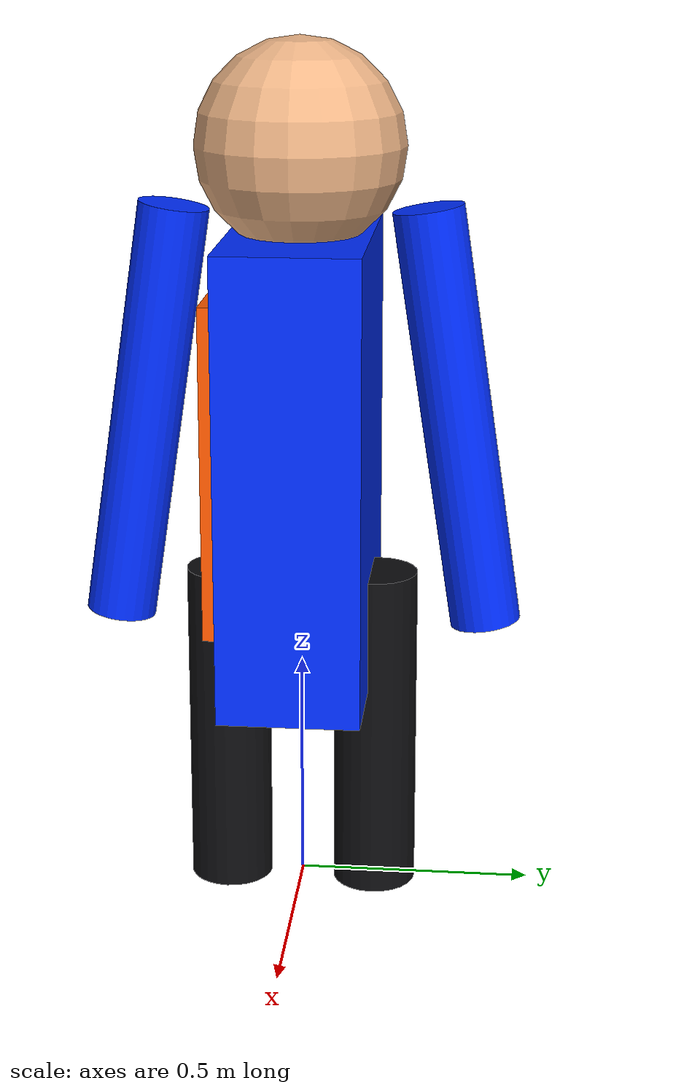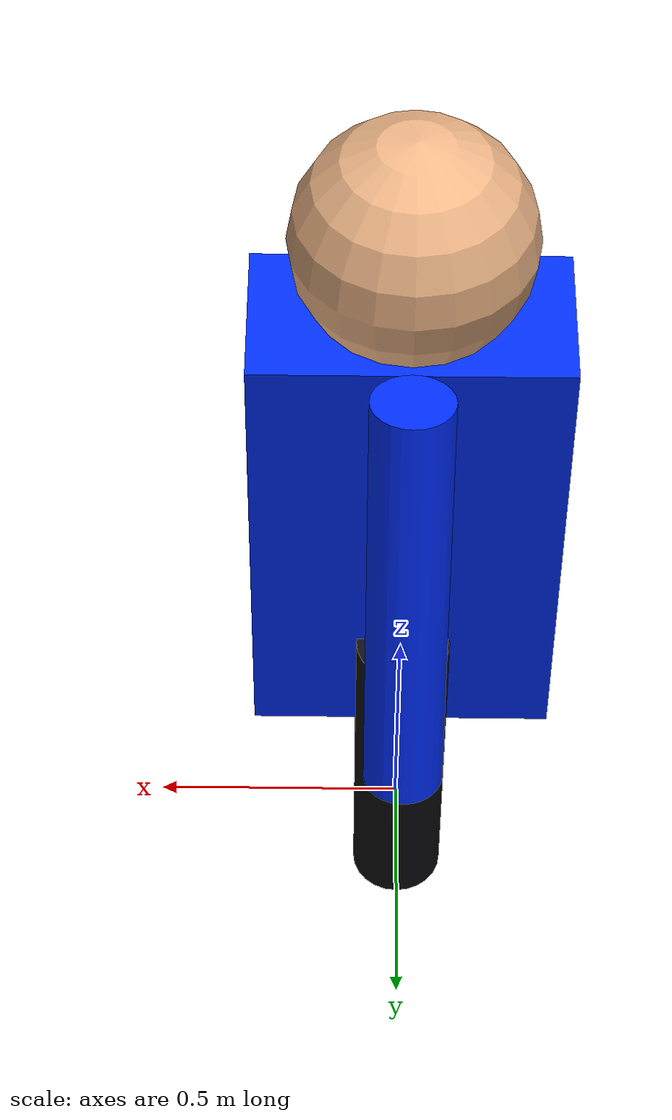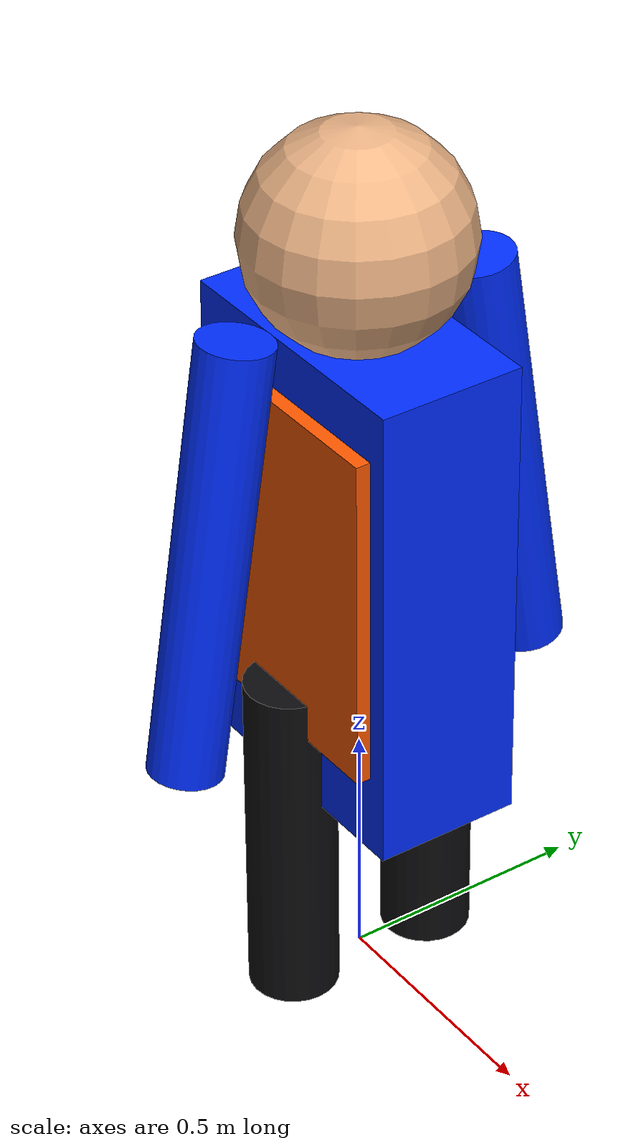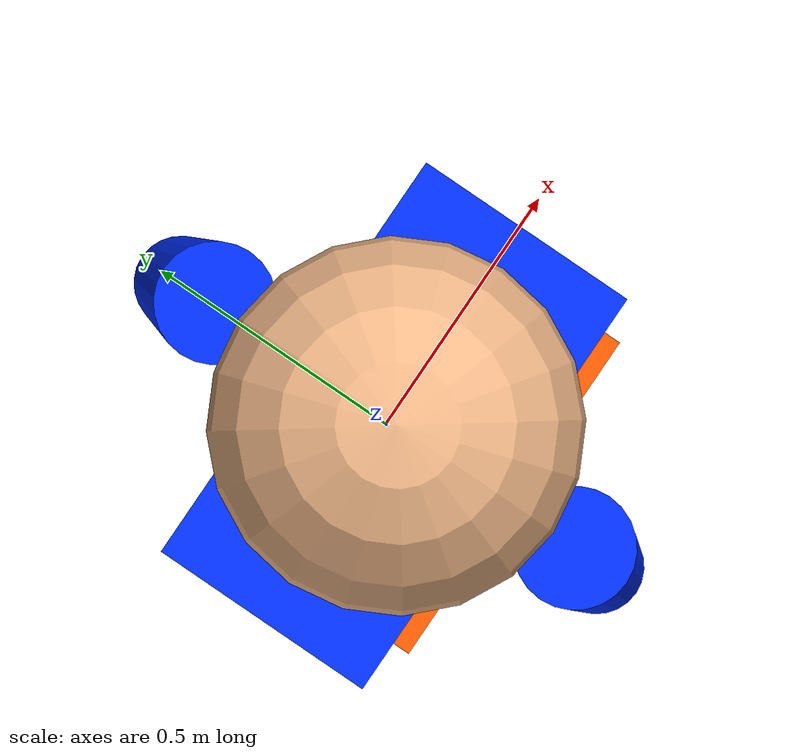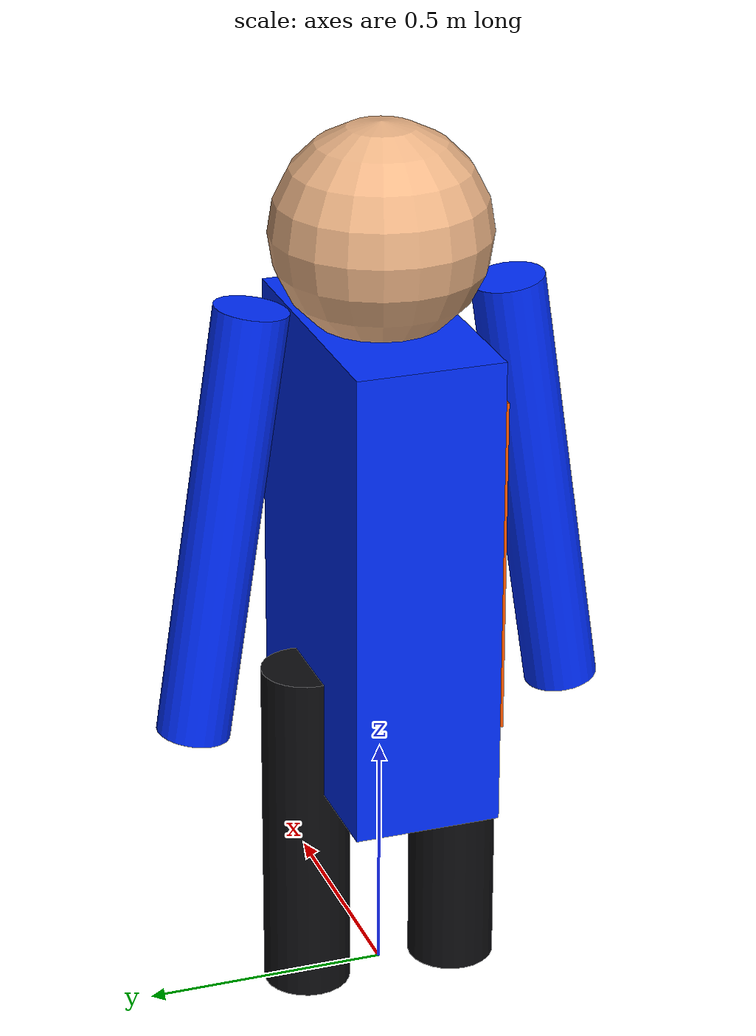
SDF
<sdf version='1.9'>
  <model name='disaster_survivor_person'>
    <static>true</static>

    <link name='torso'>
      <pose>0 0 0.95 0 0 0</pose>
      <collision name='collision'>
        <geometry><box><size>0.55 0.28 0.95</size></box></geometry>
      </collision>
      <visual name='blue_shirt'>
        <geometry><box><size>0.58 0.30 0.98</size></box></geometry>
        <material>
          <ambient>0.0 0.13 0.9 1</ambient>
          <diffuse>0.0 0.18 1.0 1</diffuse>
        </material>
      </visual>
      <visual name='orange_vest'>
        <pose>0.01 -0.16 0.03 0 0 0</pose>
        <geometry><box><size>0.48 0.04 0.70</size></box></geometry>
        <material>
          <ambient>1.0 0.22 0.0 1</ambient>
          <diffuse>1.0 0.35 0.0 1</diffuse>
        </material>
      </visual>
    </link>

    <link name='head'>
      <pose>0 0 1.62 0 0 0</pose>
      <collision name='collision'>
        <geometry><sphere><radius>0.22</radius></sphere></geometry>
      </collision>
      <visual name='visual'>
        <geometry><sphere><radius>0.22</radius></sphere></geometry>
        <material>
          <ambient>0.84 0.62 0.45 1</ambient>
          <diffuse>0.92 0.70 0.52 1</diffuse>
        </material>
      </visual>
    </link>

    <link name='left_arm'>
      <pose>0 0.33 1.05 0.15 0.0 0.0</pose>
      <collision name='collision'>
        <geometry><cylinder><radius>0.075</radius><length>0.9</length></cylinder></geometry>
      </collision>
      <visual name='visual'>
        <geometry><cylinder><radius>0.075</radius><length>0.9</length></cylinder></geometry>
        <material><diffuse>0.0 0.18 1.0 1</diffuse></material>
      </visual>
    </link>

    <link name='right_arm'>
      <pose>0 -0.33 1.05 -0.15 0.0 0.0</pose>
      <collision name='collision'>
        <geometry><cylinder><radius>0.075</radius><length>0.9</length></cylinder></geometry>
      </collision>
      <visual name='visual'>
        <geometry><cylinder><radius>0.075</radius><length>0.9</length></cylinder></geometry>
        <material><diffuse>0.0 0.18 1.0 1</diffuse></material>
      </visual>
    </link>

    <link name='left_leg'>
      <pose>0 0.16 0.35 0 0 0</pose>
      <collision name='collision'>
        <geometry><cylinder><radius>0.09</radius><length>0.72</length></cylinder></geometry>
      </collision>
      <visual name='visual'>
        <geometry><cylinder><radius>0.09</radius><length>0.72</length></cylinder></geometry>
        <material><diffuse>0.05 0.05 0.06 1</diffuse></material>
      </visual>
    </link>

    <link name='right_leg'>
      <pose>0 -0.16 0.35 0 0 0</pose>
      <collision name='collision'>
        <geometry><cylinder><radius>0.09</radius><length>0.72</length></cylinder></geometry>
      </collision>
      <visual name='visual'>
        <geometry><cylinder><radius>0.09</radius><length>0.72</length></cylinder></geometry>
        <material><diffuse>0.05 0.05 0.06 1</diffuse></material>
      </visual>
    </link>
  </model>
</sdf>
